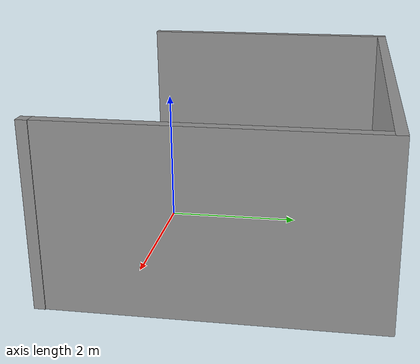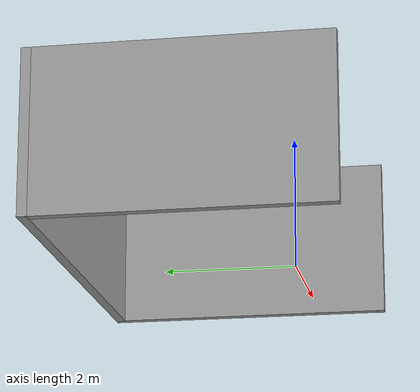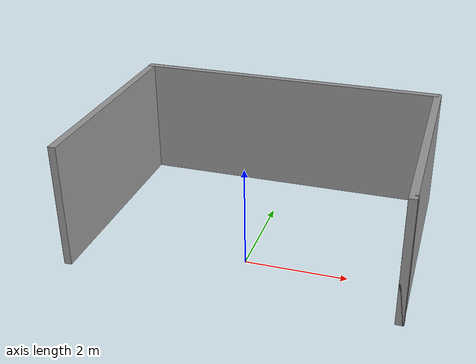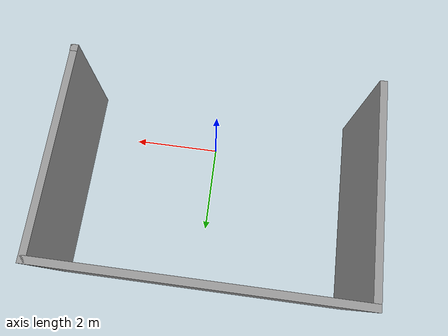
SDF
<?xml version='1.0'?>
<sdf version='1.6'>
  <model name='newworld2'>
    <pose frame=''>-0.076975 1.20313 0 0 -0 0</pose>
    <link name='Wall_10'>
      <collision name='Wall_10_Collision'>
        <geometry>
          <box>
            <size>4.5 0.15 2.5</size>
          </box>
        </geometry>
        <pose frame=''>0 0 1.25 0 -0 0</pose>
      </collision>
      <visual name='Wall_10_Visual'>
        <pose frame=''>0 0 1.25 0 -0 0</pose>
        <geometry>
          <box>
            <size>4.5 0.15 2.5</size>
          </box>
        </geometry>
        <material>
          <script>
            <uri>file://media/materials/scripts/gazebo.material</uri>
            <name>Gazebo/Grey</name>
          </script>
          <ambient>1 1 1 1</ambient>
        </material>
        <meta>
          <layer>0</layer>
        </meta>
      </visual>
      <pose frame=''>-3.18 0 0 0 0 -1.5708</pose>
    </link>
    <link name='Wall_5'>
      <collision name='Wall_5_Collision'>
        <geometry>
          <box>
            <size>6.5 0.15 2.5</size>
          </box>
        </geometry>
        <pose frame=''>0 0 1.25 0 -0 0</pose>
      </collision>
      <visual name='Wall_5_Visual'>
        <pose frame=''>0 0 1.25 0 -0 0</pose>
        <geometry>
          <box>
            <size>6.5 0.15 2.5</size>
          </box>
        </geometry>
        <material>
          <script>
            <uri>file://media/materials/scripts/gazebo.material</uri>
            <name>Gazebo/Grey</name>
          </script>
          <ambient>1 1 1 1</ambient>
        </material>
        <meta>
          <layer>0</layer>
        </meta>
      </visual>
      <pose frame=''>-0.005 2.175 0 0 -0 0</pose>
    </link>
    <link name='Wall_6'>
      <collision name='Wall_6_Collision'>
        <geometry>
          <box>
            <size>4.5 0.15 2.5</size>
          </box>
        </geometry>
        <pose frame=''>0 0 1.25 0 -0 0</pose>
      </collision>
      <visual name='Wall_6_Visual'>
        <pose frame=''>0 0 1.25 0 -0 0</pose>
        <geometry>
          <box>
            <size>4.5 0.15 2.5</size>
          </box>
        </geometry>
        <material>
          <script>
            <uri>file://media/materials/scripts/gazebo.material</uri>
            <name>Gazebo/Grey</name>
          </script>
          <ambient>1 1 1 1</ambient>
        </material>
        <meta>
          <layer>0</layer>
        </meta>
      </visual>
      <pose frame=''>3.17 0 0 0 0 -1.5708</pose>
    </link>
    <link name='Wall_7'>
      <collision name='Wall_7_Collision'>
        <geometry>
          <box>
            <size>0.16 0.15 2.5</size>
          </box>
        </geometry>
        <pose frame=''>0 0 1.25 0 -0 0</pose>
      </collision>
      <visual name='Wall_7_Visual'>
        <pose frame=''>0 0 1.25 0 -0 0</pose>
        <geometry>
          <box>
            <size>0.16 0.15 2.5</size>
          </box>
        </geometry>
        <material>
          <script>
            <uri>file://media/materials/scripts/gazebo.material</uri>
            <name>Gazebo/Grey</name>
          </script>
          <ambient>1 1 1 1</ambient>
        </material>
        <meta>
          <layer>0</layer>
        </meta>
      </visual>
      <pose frame=''>3.175 -2.175 0 0 -0 0</pose>
    </link>
    <static>1</static>
  </model>
</sdf>
